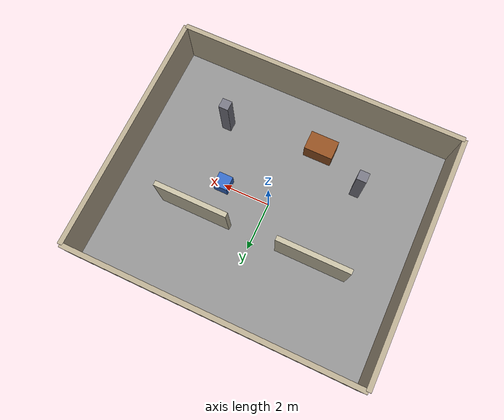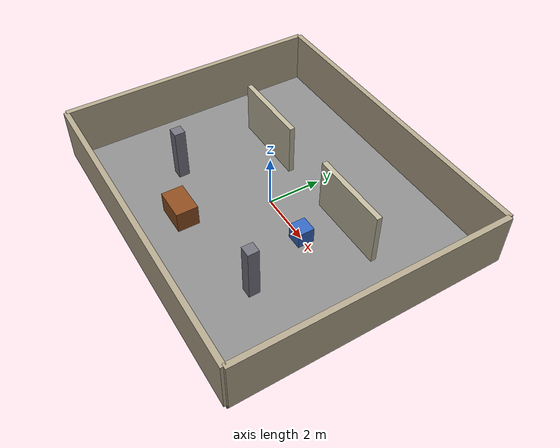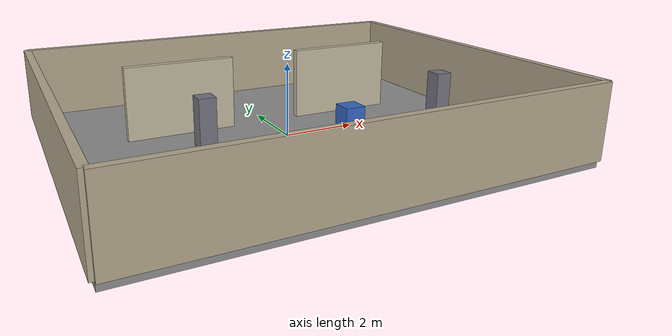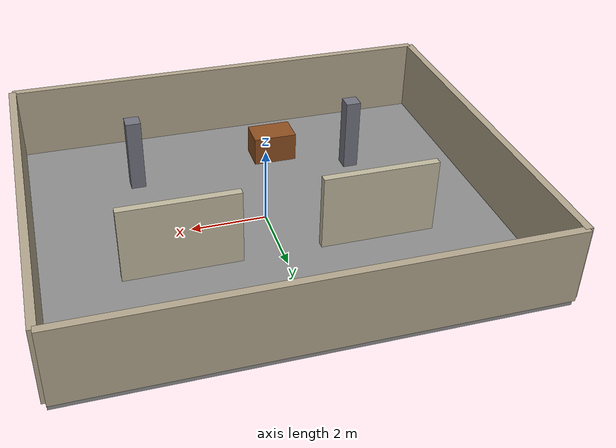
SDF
<?xml version="1.0"?>
<sdf version="1.6">
  <world name="construction_site">

    <!-- 1. Physics settings -->
    <physics type="ode">
      <max_step_size>0.001</max_step_size>
      <real_time_factor>1.0</real_time_factor>
    </physics>

    <!-- 2. Lighting -->
    <include>
      <uri>model://sun</uri>
    </include>

    <!-- 3. Ground plane -->
    <model name="site_floor">
      <static>true</static>
      <link name="floor_link">
        <collision name="floor_collision">
          <geometry>
            <box>
              <size>12 10 0.2</size>
            </box>
          </geometry>
        </collision>
        <visual name="floor_visual">
          <geometry>
            <box>
              <size>12 10 0.2</size>
            </box>
          </geometry>
          <material>
            <ambient>0.45 0.45 0.45 1</ambient>
            <diffuse>0.55 0.55 0.55 1</diffuse>
          </material>
        </visual>
      </link>
      <pose>0 0 -0.1 0 0 0</pose>
    </model>

    <!-- 4. Perimeter walls -->
    <model name="north_wall">
      <static>true</static>
      <pose>0 5 1 0 0 0</pose>
      <link name="wall_link">
        <collision name="collision">
          <geometry><box><size>12 0.2 2</size></box></geometry>
        </collision>
        <visual name="visual">
          <geometry><box><size>12 0.2 2</size></box></geometry>
          <material><ambient>0.7 0.65 0.55 1</ambient></material>
        </visual>
      </link>
    </model>

    <model name="south_wall">
      <static>true</static>
      <pose>0 -5 1 0 0 0</pose>
      <link name="wall_link">
        <collision name="collision">
          <geometry><box><size>12 0.2 2</size></box></geometry>
        </collision>
        <visual name="visual">
          <geometry><box><size>12 0.2 2</size></box></geometry>
          <material><ambient>0.7 0.65 0.55 1</ambient></material>
        </visual>
      </link>
    </model>

    <model name="east_wall">
      <static>true</static>
      <pose>6 0 1 0 0 0</pose>
      <link name="wall_link">
        <collision name="collision">
          <geometry><box><size>0.2 10 2</size></box></geometry>
        </collision>
        <visual name="visual">
          <geometry><box><size>0.2 10 2</size></box></geometry>
          <material><ambient>0.7 0.65 0.55 1</ambient></material>
        </visual>
      </link>
    </model>

    <model name="west_wall">
      <static>true</static>
      <pose>-6 0 1 0 0 0</pose>
      <link name="wall_link">
        <collision name="collision">
          <geometry><box><size>0.2 10 2</size></box></geometry>
        </collision>
        <visual name="visual">
          <geometry><box><size>0.2 10 2</size></box></geometry>
          <material><ambient>0.7 0.65 0.55 1</ambient></material>
        </visual>
      </link>
    </model>

    <!-- 5. Internal wall with a 2 m doorway -->
    <model name="partition_left">
      <static>true</static>
      <pose>-2.5 1.5 1 0 0 0</pose>
      <link name="wall_link">
        <collision name="collision">
          <geometry><box><size>3 0.2 2</size></box></geometry>
        </collision>
        <visual name="visual">
          <geometry><box><size>3 0.2 2</size></box></geometry>
          <material><ambient>0.75 0.72 0.62 1</ambient></material>
        </visual>
      </link>
    </model>

    <model name="partition_right">
      <static>true</static>
      <pose>2.5 1.5 1 0 0 0</pose>
      <link name="wall_link">
        <collision name="collision">
          <geometry><box><size>3 0.2 2</size></box></geometry>
        </collision>
        <visual name="visual">
          <geometry><box><size>3 0.2 2</size></box></geometry>
          <material><ambient>0.75 0.72 0.62 1</ambient></material>
        </visual>
      </link>
    </model>

    <!-- 6. Pillars -->
    <model name="pillar_1">
      <static>true</static>
      <pose>-3 -2 1 0 0 0</pose>
      <link name="pillar_link">
        <collision name="collision">
          <geometry><box><size>0.4 0.4 2</size></box></geometry>
        </collision>
        <visual name="visual">
          <geometry><box><size>0.4 0.4 2</size></box></geometry>
          <material><ambient>0.45 0.45 0.5 1</ambient></material>
        </visual>
      </link>
    </model>

    <model name="pillar_2">
      <static>true</static>
      <pose>3 -2.5 1 0 0 0</pose>
      <link name="pillar_link">
        <collision name="collision">
          <geometry><box><size>0.4 0.4 2</size></box></geometry>
        </collision>
        <visual name="visual">
          <geometry><box><size>0.4 0.4 2</size></box></geometry>
          <material><ambient>0.45 0.45 0.5 1</ambient></material>
        </visual>
      </link>
    </model>

    <!-- 7. Boxes / material obstacles -->
    <model name="material_stack">
      <static>true</static>
      <pose>-1 -3 0.4 0 0 0</pose>
      <link name="stack_link">
        <collision name="collision">
          <geometry><box><size>1.2 0.8 0.8</size></box></geometry>
        </collision>
        <visual name="visual">
          <geometry><box><size>1.2 0.8 0.8</size></box></geometry>
          <material><ambient>0.55 0.3 0.12 1</ambient></material>
        </visual>
      </link>
    </model>

    <model name="supply_box">
      <static>true</static>
      <pose>2 0 0.3 0 0 0</pose>
      <link name="box_link">
        <collision name="collision">
          <geometry><box><size>0.6 0.6 0.6</size></box></geometry>
        </collision>
        <visual name="visual">
          <geometry><box><size>0.6 0.6 0.6</size></box></geometry>
          <material><ambient>0.2 0.4 0.75 1</ambient></material>
        </visual>
      </link>
    </model>

  </world>
</sdf>
